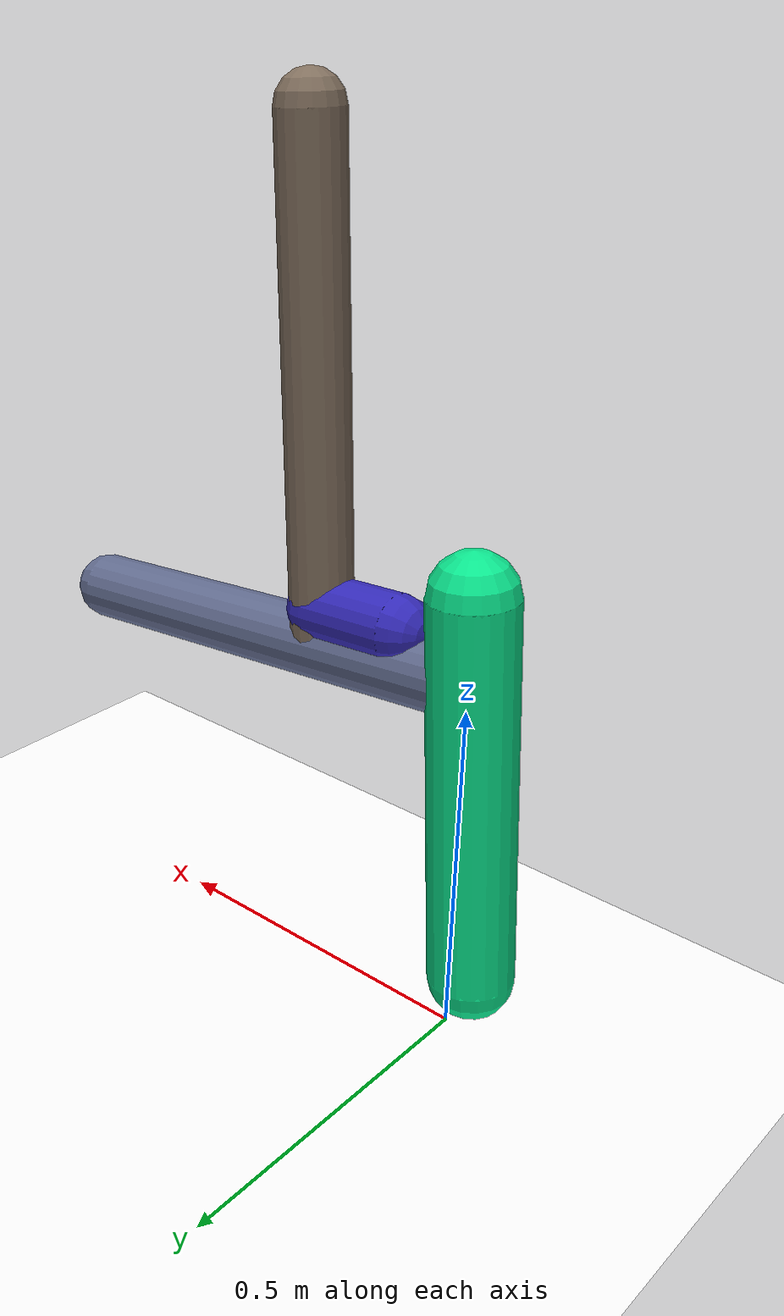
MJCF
<mujoco model="morphology">
  <option timestep="0.01"/>
  <default>
    <default class="/"/>
  </default>
  <asset>
    <texture name="texplane" type="2d" builtin="checker" rgb1="0.1 0.2 0.3" rgb2="0.2 0.3 0.4" width="300" height="300"/>
    <material name="MatPlane" class="/" texture="texplane" texrepeat="20 20" specular="1" shininess="1" reflectance="0.5"/>
  </asset>
  <worldbody>
    <light name="//unnamed_light_0" class="/" directional="true" pos="0 0 1.5" dir="0 0 -1.3" cutoff="1e+02" exponent="1" diffuse="1 1 1" specular="0.1 0.1 0.1"/>
    <geom name="ground" class="/" type="plane" size="15 15 0.5" material="MatPlane" rgba="1 1 1 1"/>
    <body name="body" pos="0 0 0.66">
      <geom name="geom0" class="/" type="capsule" contype="1" conaffinity="1" condim="3" size="0.061" rgba="0.039 0.92 0.57 1" friction="0.4 0.1 0.1" fromto="0 0 0 -0.035 0 -0.56"/>
      <body name="body1" pos="-0.0075 0 -0.12">
        <geom name="geom1" class="/" type="capsule" contype="1" conaffinity="1" condim="3" size="0.049" rgba="0.39 0.43 0.57 1" friction="0.4 0.1 0.1" fromto="0 0 0 0.69 0 -0.061"/>
        <body name="body2" pos="0.25 0 -0.023">
          <geom name="geom2" class="/" type="capsule" contype="1" conaffinity="1" condim="3" size="0.045" rgba="0.52 0.45 0.38 1" friction="0.4 0.1 0.1" fromto="0 0 0 0.03 0 0.69"/>
          <body name="body3" pos="0.0025 0 0.056">
            <geom name="geom3" class="/" type="capsule" contype="1" conaffinity="1" condim="3" size="0.048" rgba="0.21 0.17 0.74 1" friction="0.4 0.1 0.1" fromto="0 0 0 -0.13 0 0.0083"/>
            <joint name="joint3" class="/" type="hinge" axis="0 1 0" limited="true" stiffness="20" range="-36 36" armature="0.1" damping="2"/>
          </body>
          <joint name="joint2" class="/" type="hinge" axis="0 1 0" limited="true" stiffness="20" range="-34 34" armature="0.1" damping="2"/>
        </body>
        <joint name="joint1" class="/" type="hinge" axis="0 1 0" limited="true" stiffness="20" range="-42 42" armature="0.1" damping="2"/>
      </body>
      <joint name="rootx" class="/" type="slide" axis="1 0 0" limited="false" stiffness="0" armature="0" damping="0"/>
      <joint name="rootz" class="/" type="slide" axis="0 0 1" limited="false" stiffness="0" armature="0" damping="0"/>
      <joint name="rooty" class="/" type="hinge" axis="0 1 0" limited="false" stiffness="0" armature="0" damping="0"/>
    </body>
  </worldbody>
  <actuator>
    <motor name="motor3" class="/" ctrllimited="true" ctrlrange="-1 1" gear="1.4e+02" joint="joint3"/>
    <motor name="motor2" class="/" ctrllimited="true" ctrlrange="-1 1" gear="1e+02" joint="joint2"/>
    <motor name="motor1" class="/" ctrllimited="true" ctrlrange="-1 1" gear="1.4e+02" joint="joint1"/>
  </actuator>
  <sensor>
    <subtreelinvel name="velocity" body="body"/>
  </sensor>
</mujoco>
